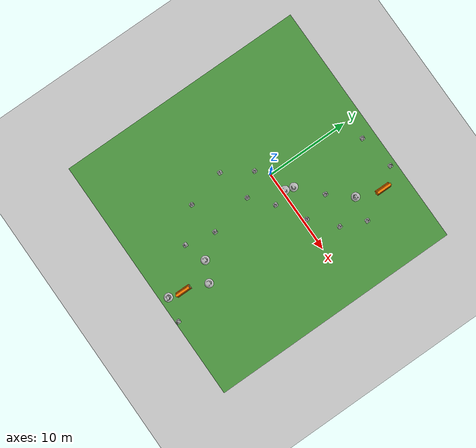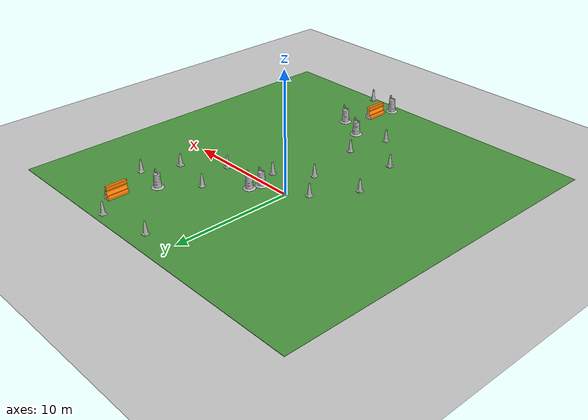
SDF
<sdf version="1.7">
 <world name="default">
  <light name="sun" type="directional">
   <pose>0 0 10 0 -0 0</pose>
   <diffuse>0.8 0.8 0.8 1</diffuse>
   <specular>0.2 0.2 0.2 1</specular>
   <attenuation>
    <range>1000</range>
    <constant>0.9</constant>
    <linear>0.01</linear>
    <quadratic>0.001</quadratic>
   </attenuation>
   <direction>-0.5 0.1 -0.9</direction>
   <spot><inner_angle>0</inner_angle><outer_angle>0</outer_angle><falloff>0</falloff></spot>
  </light>
  <model name="ground_plane">
   <static>1</static>
   <link name="link">
    <collision name="collision">
     <geometry><plane><normal>0 0 1</normal><size>100 100</size></plane></geometry>
     <surface><friction><ode><mu>100</mu><mu2>50</mu2></ode></friction></surface>
    </collision>
    <visual name="visual">
     <cast_shadows>0</cast_shadows>
     <geometry><plane><normal>0 0 1</normal><size>100 100</size></plane></geometry>
     <material>
      <script><uri>file://media/materials/scripts/gazebo.material</uri><name>Gazebo/Grey</name></script>
     </material>
    </visual>
   </link>
  </model>
  <gravity>0 0 -9.8</gravity>
  <magnetic_field>6e-06 2.3e-05 -4.2e-05</magnetic_field>
  <atmosphere type="adiabatic"/>
  <physics type="ode">
   <max_step_size>0.001</max_step_size>
   <real_time_factor>1</real_time_factor>
   <real_time_update_rate>1000</real_time_update_rate>
  </physics>
  <scene><ambient>0.4 0.4 0.4 1</ambient><background>0.7 0.7 0.7 1</background><shadows>1</shadows></scene>
  <audio><device>default</device></audio>
  <spherical_coordinates>
   <surface_model>EARTH_WGS84</surface_model>
   <latitude_deg>0</latitude_deg>
   <longitude_deg>0</longitude_deg>
   <elevation>0</elevation>
   <heading_deg>0</heading_deg>
  </spherical_coordinates>
  <model name="igvc_ground">
   <static>1</static>
   <link name="link">
    <collision name="collision">
     <geometry><plane><normal>0 0 1</normal><size>30 30</size></plane></geometry>
     <surface><friction><ode><mu>100</mu><mu2>50</mu2></ode></friction></surface>
    </collision>
    <visual name="visual">
     <geometry><plane><normal>0 0 1</normal><size>30 30</size></plane></geometry>
     <material>
      <script>
       <uri>model://igvc_ground/materials/scripts</uri>
       <uri>model://igvc_ground/materials/textures</uri>
       <name>IGVC/GrassLane</name>
      </script>
     </material>
    </visual>
   </link>
   <pose>1.63607 -2.85241 0 0 -0 0</pose>
  </model>
  <model name="Construction Cone">
   <link name="link">
    <collision name="collision">
     <geometry>
      <mesh><scale>10 10 10</scale><uri>model://construction_cone/meshes/construction_cone.dae</uri></mesh>
     </geometry>
    </collision>
    <visual name="visual">
     <geometry>
      <mesh><scale>10 10 10</scale><uri>model://construction_cone/meshes/construction_cone.dae</uri></mesh>
     </geometry>
    </visual>
    <inertial>
     <inertia><ixx>1</ixx><ixy>0</ixy><ixz>0</ixz><iyy>1</iyy><iyz>0</iyz><izz>1</izz></inertia>
     <mass>1</mass>
    </inertial>
   </link>
   <pose>2.5447 10.6884 -0 0 -1e-06 0</pose>
  </model>
  <model name="Construction Cone_0">
   <link name="link">
    <collision name="collision">
     <geometry>
      <mesh><scale>10 10 10</scale><uri>model://construction_cone/meshes/construction_cone.dae</uri></mesh>
     </geometry>
    </collision>
    <visual name="visual">
     <geometry>
      <mesh><scale>10 10 10</scale><uri>model://construction_cone/meshes/construction_cone.dae</uri></mesh>
     </geometry>
    </visual>
    <inertial>
     <inertia><ixx>1</ixx><ixy>0</ixy><ixz>0</ixz><iyy>1</iyy><iyz>0</iyz><izz>1</izz></inertia>
     <mass>1</mass>
    </inertial>
   </link>
   <pose>6.80741 11.4477 -0 0 -1e-06 0</pose>
  </model>
  <model name="Construction Barrel">
   <link name="link">
    <inertial>
     <pose>0 0 0.4 0 -0 0</pose>
     <mass>500</mass>
     <inertia><ixx>51.2096</ixx><iyy>51.2096</iyy><izz>25</izz><ixy>0</ixy><ixz>0</ixz><iyz>0</iyz></inertia>
    </inertial>
    <collision name="collision">
     <geometry><mesh><uri>model://construction_barrel/meshes/construction_barrel.dae</uri></mesh></geometry>
    </collision>
    <visual name="visual">
     <geometry><mesh><uri>model://construction_barrel/meshes/construction_barrel.dae</uri></mesh></geometry>
    </visual>
   </link>
   <pose>7.41305 6.31694 -1e-06 1e-06 6e-06 -0.000301</pose>
  </model>
  <model name="Construction Cone_1">
   <link name="link">
    <collision name="collision">
     <geometry>
      <mesh><scale>10 10 10</scale><uri>model://construction_cone/meshes/construction_cone.dae</uri></mesh>
     </geometry>
    </collision>
    <visual name="visual">
     <geometry>
      <mesh><scale>10 10 10</scale><uri>model://construction_cone/meshes/construction_cone.dae</uri></mesh>
     </geometry>
    </visual>
    <inertial>
     <inertia><ixx>1</ixx><ixy>0</ixy><ixz>0</ixz><iyy>1</iyy><iyz>0</iyz><izz>1</izz></inertia>
     <mass>1</mass>
    </inertial>
   </link>
   <pose>10.3079 5.85083 -0 0 -1e-06 0</pose>
  </model>
  <model name="Construction Cone_2">
   <link name="link">
    <collision name="collision">
     <geometry>
      <mesh><scale>10 10 10</scale><uri>model://construction_cone/meshes/construction_cone.dae</uri></mesh>
     </geometry>
    </collision>
    <visual name="visual">
     <geometry>
      <mesh><scale>10 10 10</scale><uri>model://construction_cone/meshes/construction_cone.dae</uri></mesh>
     </geometry>
    </visual>
    <inertial>
     <inertia><ixx>1</ixx><ixy>0</ixy><ixz>0</ixz><iyy>1</iyy><iyz>0</iyz><izz>1</izz></inertia>
     <mass>1</mass>
    </inertial>
   </link>
   <pose>6.32027 0.471455 -0 0 -1e-06 0</pose>
  </model>
  <model name="Construction Barrel_0">
   <link name="link">
    <inertial>
     <pose>0 0 0.4 0 -0 0</pose>
     <mass>500</mass>
     <inertia><ixx>51.2096</ixx><iyy>51.2096</iyy><izz>25</izz><ixy>0</ixy><ixz>0</ixz><iyz>0</iyz></inertia>
    </inertial>
    <collision name="collision">
     <geometry><mesh><uri>model://construction_barrel/meshes/construction_barrel.dae</uri></mesh></geometry>
    </collision>
    <visual name="visual">
     <geometry><mesh><uri>model://construction_barrel/meshes/construction_barrel.dae</uri></mesh></geometry>
    </visual>
   </link>
   <pose>2.59665 1.34624 0 0 -0 0.118893</pose>
  </model>
  <model name="Construction Barrel_1">
   <link name="link">
    <inertial>
     <pose>0 0 0.4 0 -0 0</pose>
     <mass>500</mass>
     <inertia><ixx>51.2096</ixx><iyy>51.2096</iyy><izz>25</izz><ixy>0</ixy><ixz>0</ixz><iyz>0</iyz></inertia>
    </inertial>
    <collision name="collision">
     <geometry><mesh><uri>model://construction_barrel/meshes/construction_barrel.dae</uri></mesh></geometry>
    </collision>
    <visual name="visual">
     <geometry><mesh><uri>model://construction_barrel/meshes/construction_barrel.dae</uri></mesh></geometry>
    </visual>
   </link>
   <pose>2.31641 0.371881 -2e-06 8e-06 -4e-06 0.168201</pose>
  </model>
  <model name="Construction Cone_3">
   <link name="link">
    <collision name="collision">
     <geometry>
      <mesh><scale>10 10 10</scale><uri>model://construction_cone/meshes/construction_cone.dae</uri></mesh>
     </geometry>
    </collision>
    <visual name="visual">
     <geometry>
      <mesh><scale>10 10 10</scale><uri>model://construction_cone/meshes/construction_cone.dae</uri></mesh>
     </geometry>
    </visual>
    <inertial>
     <inertia><ixx>1</ixx><ixy>0</ixy><ixz>0</ixz><iyy>1</iyy><iyz>0</iyz><izz>1</izz></inertia>
     <mass>1</mass>
    </inertial>
   </link>
   <pose>0.609445 -3.53858 -0 0 -1e-06 0</pose>
  </model>
  <model name="Construction Cone_4">
   <link name="link">
    <collision name="collision">
     <geometry>
      <mesh><scale>10 10 10</scale><uri>model://construction_cone/meshes/construction_cone.dae</uri></mesh>
     </geometry>
    </collision>
    <visual name="visual">
     <geometry>
      <mesh><scale>10 10 10</scale><uri>model://construction_cone/meshes/construction_cone.dae</uri></mesh>
     </geometry>
    </visual>
    <inertial>
     <inertia><ixx>1</ixx><ixy>0</ixy><ixz>0</ixz><iyy>1</iyy><iyz>0</iyz><izz>1</izz></inertia>
     <mass>1</mass>
    </inertial>
   </link>
   <pose>-3.38711 -4.41233 -0 0 -1e-06 0</pose>
  </model>
  <model name="Construction Cone_5">
   <link name="link">
    <collision name="collision">
     <geometry>
      <mesh><scale>10 10 10</scale><uri>model://construction_cone/meshes/construction_cone.dae</uri></mesh>
     </geometry>
    </collision>
    <visual name="visual">
     <geometry>
      <mesh><scale>10 10 10</scale><uri>model://construction_cone/meshes/construction_cone.dae</uri></mesh>
     </geometry>
    </visual>
    <inertial>
     <inertia><ixx>1</ixx><ixy>0</ixy><ixz>0</ixz><iyy>1</iyy><iyz>0</iyz><izz>1</izz></inertia>
     <mass>1</mass>
    </inertial>
   </link>
   <pose>-2.27729 -8.99328 -0 0 -1e-06 0</pose>
  </model>
  <model name="Construction Cone_6">
   <link name="link">
    <collision name="collision">
     <geometry>
      <mesh><scale>10 10 10</scale><uri>model://construction_cone/meshes/construction_cone.dae</uri></mesh>
     </geometry>
    </collision>
    <visual name="visual">
     <geometry>
      <mesh><scale>10 10 10</scale><uri>model://construction_cone/meshes/construction_cone.dae</uri></mesh>
     </geometry>
    </visual>
    <inertial>
     <inertia><ixx>1</ixx><ixy>0</ixy><ixz>0</ixz><iyy>1</iyy><iyz>0</iyz><izz>1</izz></inertia>
     <mass>1</mass>
    </inertial>
   </link>
   <pose>1.6603 -8.60604 -0 0 -1e-06 0</pose>
  </model>
  <model name="Construction Barrel_2">
   <link name="link">
    <inertial>
     <pose>0 0 0.4 0 -0 0</pose>
     <mass>500</mass>
     <inertia><ixx>51.2096</ixx><iyy>51.2096</iyy><izz>25</izz><ixy>0</ixy><ixz>0</ixz><iyz>0</iyz></inertia>
    </inertial>
    <collision name="collision">
     <geometry><mesh><uri>model://construction_barrel/meshes/construction_barrel.dae</uri></mesh></geometry>
    </collision>
    <visual name="visual">
     <geometry><mesh><uri>model://construction_barrel/meshes/construction_barrel.dae</uri></mesh></geometry>
    </visual>
   </link>
   <pose>4.61092 -16.9058 -1e-06 1e-06 6e-06 -0.000227</pose>
  </model>
  <model name="Construction Barrel_3">
   <link name="link">
    <inertial>
     <pose>0 0 0.4 0 -0 0</pose>
     <mass>500</mass>
     <inertia><ixx>51.2096</ixx><iyy>51.2096</iyy><izz>25</izz><ixy>0</ixy><ixz>0</ixz><iyz>0</iyz></inertia>
    </inertial>
    <collision name="collision">
     <geometry><mesh><uri>model://construction_barrel/meshes/construction_barrel.dae</uri></mesh></geometry>
    </collision>
    <visual name="visual">
     <geometry><mesh><uri>model://construction_barrel/meshes/construction_barrel.dae</uri></mesh></geometry>
    </visual>
   </link>
   <pose>5.9129 -12.361 -1e-06 1e-06 6e-06 -0.000219</pose>
  </model>
  <model name="Construction Barrel_4">
   <link name="link">
    <inertial>
     <pose>0 0 0.4 0 -0 0</pose>
     <mass>500</mass>
     <inertia><ixx>51.2096</ixx><iyy>51.2096</iyy><izz>25</izz><ixy>0</ixy><ixz>0</ixz><iyz>0</iyz></inertia>
    </inertial>
    <collision name="collision">
     <geometry><mesh><uri>model://construction_barrel/meshes/construction_barrel.dae</uri></mesh></geometry>
    </collision>
    <visual name="visual">
     <geometry><mesh><uri>model://construction_barrel/meshes/construction_barrel.dae</uri></mesh></geometry>
    </visual>
   </link>
   <pose>3.5806 -11.2621 -1e-06 1e-06 6e-06 -0.000211</pose>
  </model>
  <model name="Construction Cone_7">
   <link name="link">
    <collision name="collision">
     <geometry>
      <mesh><scale>10 10 10</scale><uri>model://construction_cone/meshes/construction_cone.dae</uri></mesh>
     </geometry>
    </collision>
    <visual name="visual">
     <geometry>
      <mesh><scale>10 10 10</scale><uri>model://construction_cone/meshes/construction_cone.dae</uri></mesh>
     </geometry>
    </visual>
    <inertial>
     <inertia><ixx>1</ixx><ixy>0</ixy><ixz>0</ixz><iyy>1</iyy><iyz>0</iyz><izz>1</izz></inertia>
     <mass>1</mass>
    </inertial>
   </link>
   <pose>0.962767 -12.106 -0 0 -1e-06 0</pose>
  </model>
  <model name="Construction Cone_8">
   <link name="link">
    <collision name="collision">
     <geometry>
      <mesh><scale>10 10 10</scale><uri>model://construction_cone/meshes/construction_cone.dae</uri></mesh>
     </geometry>
    </collision>
    <visual name="visual">
     <geometry>
      <mesh><scale>10 10 10</scale><uri>model://construction_cone/meshes/construction_cone.dae</uri></mesh>
     </geometry>
    </visual>
    <inertial>
     <inertia><ixx>1</ixx><ixy>0</ixy><ixz>0</ixz><iyy>1</iyy><iyz>0</iyz><izz>1</izz></inertia>
     <mass>1</mass>
    </inertial>
   </link>
   <pose>7.40557 -17.5246 -0 0 -1e-06 0</pose>
  </model>
  <model name="Construction Cone_9">
   <link name="link">
    <collision name="collision">
     <geometry>
      <mesh><scale>10 10 10</scale><uri>model://construction_cone/meshes/construction_cone.dae</uri></mesh>
     </geometry>
    </collision>
    <visual name="visual">
     <geometry>
      <mesh><scale>10 10 10</scale><uri>model://construction_cone/meshes/construction_cone.dae</uri></mesh>
     </geometry>
    </visual>
    <inertial>
     <inertia><ixx>1</ixx><ixy>0</ixy><ixz>0</ixz><iyy>1</iyy><iyz>0</iyz><izz>1</izz></inertia>
     <mass>1</mass>
    </inertial>
   </link>
   <pose>-1.32937 -1.16922 -0 0 -1e-06 0</pose>
  </model>
  <model name="Construction Cone_10">
   <link name="link">
    <collision name="collision">
     <geometry>
      <mesh><scale>10 10 10</scale><uri>model://construction_cone/meshes/construction_cone.dae</uri></mesh>
     </geometry>
    </collision>
    <visual name="visual">
     <geometry>
      <mesh><scale>10 10 10</scale><uri>model://construction_cone/meshes/construction_cone.dae</uri></mesh>
     </geometry>
    </visual>
    <inertial>
     <inertia><ixx>1</ixx><ixy>0</ixy><ixz>0</ixz><iyy>1</iyy><iyz>0</iyz><izz>1</izz></inertia>
     <mass>1</mass>
    </inertial>
   </link>
   <pose>5.25915 3.75752 -0 0 -1e-06 0</pose>
  </model>
  <model name="Construction Cone_11">
   <link name="link">
    <collision name="collision">
     <geometry>
      <mesh><scale>10 10 10</scale><uri>model://construction_cone/meshes/construction_cone.dae</uri></mesh>
     </geometry>
    </collision>
    <visual name="visual">
     <geometry>
      <mesh><scale>10 10 10</scale><uri>model://construction_cone/meshes/construction_cone.dae</uri></mesh>
     </geometry>
    </visual>
    <inertial>
     <inertia><ixx>1</ixx><ixy>0</ixy><ixz>0</ixz><iyy>1</iyy><iyz>0</iyz><izz>1</izz></inertia>
     <mass>1</mass>
    </inertial>
   </link>
   <pose>3.07339 -1.43046 -0 0 -1e-06 0</pose>
  </model>
  <model name="Construction Cone_12">
   <link name="link">
    <collision name="collision">
     <geometry>
      <mesh><scale>10 10 10</scale><uri>model://construction_cone/meshes/construction_cone.dae</uri></mesh>
     </geometry>
    </collision>
    <visual name="visual">
     <geometry>
      <mesh><scale>10 10 10</scale><uri>model://construction_cone/meshes/construction_cone.dae</uri></mesh>
     </geometry>
    </visual>
    <inertial>
     <inertia><ixx>1</ixx><ixy>0</ixy><ixz>0</ixz><iyy>1</iyy><iyz>0</iyz><izz>1</izz></inertia>
     <mass>1</mass>
    </inertial>
   </link>
   <pose>9.08087 2.98352 -0 0 -1e-06 0</pose>
  </model>
  <model name="drc_practice_organge_jersey_barrier">
   <static>1</static>
   <link name="link">
    <visual name="visual">
     <geometry>
      <mesh><uri>model://drc_practice_orange_jersey_barrier/meshes/jersey_barrier.dae</uri></mesh>
     </geometry>
    </visual>
    <collision name="collision">
     <geometry>
      <mesh><uri>model://drc_practice_orange_jersey_barrier/meshes/jersey_barrier.dae</uri></mesh>
     </geometry>
    </collision>
   </link>
   <pose>8.42697 9.27546 0 0 -0 0</pose>
  </model>
  <model name="drc_practice_organge_jersey_barrier_0">
   <static>1</static>
   <link name="link">
    <visual name="visual">
     <geometry>
      <mesh><uri>model://drc_practice_orange_jersey_barrier/meshes/jersey_barrier.dae</uri></mesh>
     </geometry>
    </visual>
    <collision name="collision">
     <geometry>
      <mesh><uri>model://drc_practice_orange_jersey_barrier/meshes/jersey_barrier.dae</uri></mesh>
     </geometry>
    </collision>
   </link>
   <pose>4.97309 -15.1056 0 0 -0 0</pose>
  </model>
 </world>
</sdf>
